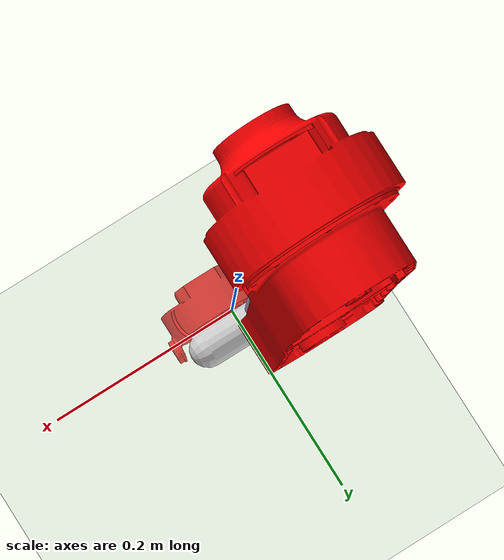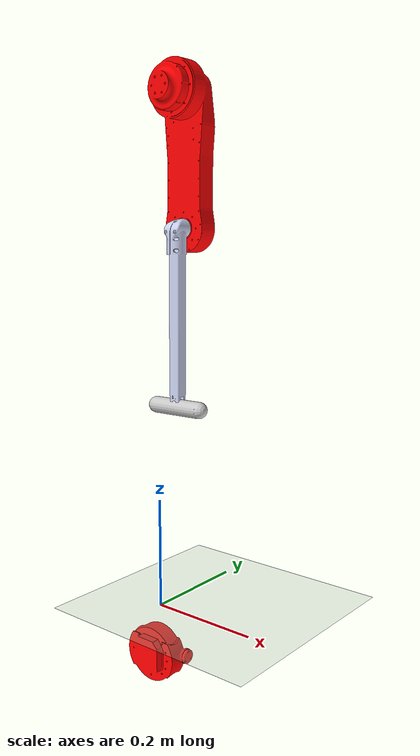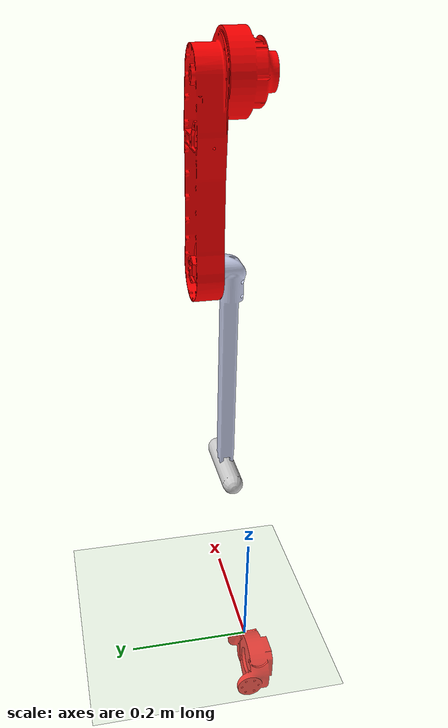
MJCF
<mujoco model="biped">
  <compiler angle="radian" meshdir="../meshes/" autolimits="true"/>
  <option integrator="RK4"/>
  <default/>
  <asset>

    <mesh name="L_SHOULDER" file="L_SHOULDER.STL"/>
    <mesh name="L_UPPER_LEG" file="L_UPPER_LEG.STL"/>
    <mesh name="L_LOWER_LEG" file="L_LOWER_LEG.STL"/>
    <mesh name="L_FOOT" file="L_FOOT.STL"/>

    <texture builtin="checker" height="100" name="texplane" rgb1="0.14 0.31 0.27" rgb2="0.47 0.63 0.6" type="2d" width="100"/>
    <material name="MatPlane" reflectance="0.5" shininess="1" specular="1" texrepeat="60 60"  texture="texplane"/>

  </asset>

  <equality>
		<weld body1="L_SHOULDER" solimp="1.0 1.0 1.0" solref="0.06 1"></weld>
	</equality>

  <worldbody>
    <light cutoff="100" diffuse="1 1 1" dir="-0 0 -1.3" directional="true" exponent="1" pos="0 0 1.3" specular=".1 .1 .1"/>
    <geom name="floor" friction="1 .1 .1" condim="3" material="MatPlane" pos="0 0 0" rgba="0.8 0.9 0.8 1" size="40 40 0.01" type="plane"/>

    <body name="L_SHOULDER" pos="0.0069 0 -0.081">
      <inertial pos="-0.0382844 -0.0118964 0.0020477" quat="1. 0. 0. 0."  mass="1.009" diaginertia="0.00052198 0.000511 0.00039225"/>
      <joint name="L_HAA" pos="0 0 0" axis="1 0 0" limited="true" range="-0.25 0.25"/>
      <geom name="L_SHOULDER" type="mesh" contype="2" rgba="1 0 0 1" mesh="L_SHOULDER"/>

      <body name="L_UPPER_LEG" pos="0 0 1.0">
        <inertial pos="-0.00032 -0.05085 -0.05289" quat="1. 0. 0. 0." mass="0.800" diaginertia="0.00110 0.001347 0.00033709"/>
        <joint name="L_HFE" pos="0 0 0" axis="0 1 0" limited="true" range="-1.5 1.5"/>
        <geom name="L_UPPER_LEG" type="mesh" contype="2"  rgba="1 0 0 1" mesh="L_UPPER_LEG"/>

        <body name="L_LOWER_LEG" pos="0 0.0589 -0.23405">
          <inertial pos="0.0 -0.0176 -0.1117" quat="1. 0. 0. 0." mass="0.0923619" diaginertia="0.000437226 0.000437181 1.55724e-05"/>
          <joint name="L_KFE" pos="0 0 0" axis="0 1 0" limited="true" range="-2.2 -0.1"/>
          <geom name="L_LOWER_LEG" type="mesh" contype="2" rgba="0.792157 0.819608 0.933333 1" mesh="L_LOWER_LEG"/>

          <body name="L_FOOT" pos="0 -0.0173 -0.30826">
            <inertial pos="3.02322e-05 -2.36197e-08 -0.0242543" quat="0.710914 0 0.703279 0" mass="0.03134" diaginertia="3.39896e-05 3.35525e-05 1.53506e-06"/>
            <joint name="L_ANKLE" pos="0 0 0" axis="0 1 0" limited="true" range="-0.7 0.7"/>
            <geom name="L_FOOT" friction="1. 0.3 0.3" size="0.015 0.05" pos="0 0 -0.01" quat="0.710914 0 0.703279 0"  type="capsule" rgba="0.8 0.8 0.8 1"/>

          </body>

        </body>

      </body>

    </body>

  </worldbody>

  <actuator>
      <motor gear="1"  joint="L_HAA" name="L_HAA"/>
        <velocity gear="1" joint="L_HAA" name="L_HAA_VEL" kv="3.18" />
      <motor gear="1"  joint="L_HFE" name="L_HFE"/>
          <velocity gear="1" joint="L_HFE" name="L_HFE_VEL" kv="3.18" />
      <motor gear="1"  joint="L_KFE" name="L_KFE"/>
          <velocity gear="1" joint="L_KFE" name="L_KFE_VEL" kv="0.95" />
      <motor gear="1"  joint="L_ANKLE" name="L_ANKLE"/>
          <velocity gear="1" joint="L_ANKLE" name="L_ANKLE_VEL" kv="0.005" />
  </actuator>
</mujoco>
